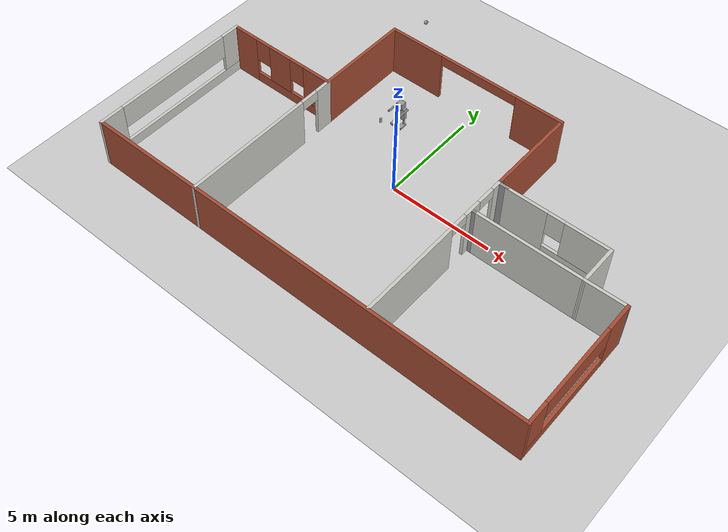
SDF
<sdf version="1.6">
 <world name="default">
  <model name="ground_plane">
   <static>1</static>
   <link name="link">
    <collision name="collision">
     <geometry><plane><normal>0 0 1</normal><size>100 100</size></plane></geometry>
     <surface><friction><ode><mu>100</mu><mu2>50</mu2></ode></friction></surface>
    </collision>
    <visual name="visual">
     <cast_shadows>0</cast_shadows>
     <geometry><plane><normal>0 0 1</normal><size>100 100</size></plane></geometry>
     <material>
      <script><uri>file://media/materials/scripts/gazebo.material</uri><name>Gazebo/Grey</name></script>
     </material>
    </visual>
   </link>
  </model>
  <model name="Building">
   <pose>0.53973 -0.53999 0 0 -0 0</pose>
   <link name="Wall_11">
    <pose>6.62948 1.82989 0 0 -0 0</pose>
    <visual name="Wall_11_Visual_0">
     <pose>-1.4822 0 1.25 0 -0 0</pose>
     <geometry><box><size>2.0356 0.15 2.5</size></box></geometry>
     <material>
      <script><uri>file://media/materials/scripts/gazebo.material</uri><name>Gazebo/CeilingTiled</name></script>
      <ambient>0.435294 0.796078 0.67451 1</ambient>
     </material>
     <meta><layer>0</layer></meta>
    </visual>
    <collision name="Wall_11_Collision_0">
     <geometry><box><size>2.0356 0.15 2.5</size></box></geometry>
     <pose>-1.4822 0 1.25 0 -0 0</pose>
    </collision>
    <visual name="Wall_11_Visual_1">
     <pose>1.0178 0 0.25 0 -0 0</pose>
     <geometry><box><size>2.9644 0.15 0.5</size></box></geometry>
     <material>
      <script><uri>file://media/materials/scripts/gazebo.material</uri><name>Gazebo/CeilingTiled</name></script>
      <ambient>0.435294 0.796078 0.67451 1</ambient>
     </material>
     <meta><layer>0</layer></meta>
    </visual>
    <collision name="Wall_11_Collision_1">
     <geometry><box><size>2.9644 0.15 0.5</size></box></geometry>
     <pose>1.0178 0 0.25 0 -0 0</pose>
    </collision>
    <visual name="Wall_11_Visual_2">
     <pose>1.4178 0 1.5 0 -0 0</pose>
     <geometry><box><size>2.1644 0.15 2</size></box></geometry>
     <material>
      <script><uri>file://media/materials/scripts/gazebo.material</uri><name>Gazebo/CeilingTiled</name></script>
      <ambient>0.435294 0.796078 0.67451 1</ambient>
     </material>
     <meta><layer>0</layer></meta>
    </visual>
    <collision name="Wall_11_Collision_2">
     <geometry><box><size>2.1644 0.15 2</size></box></geometry>
     <pose>1.4178 0 1.5 0 -0 0</pose>
    </collision>
    <visual name="Wall_11_Visual_3">
     <pose>-0.064396 0 1.9 0 -0 0</pose>
     <geometry><box><size>0.8 0.15 1.2</size></box></geometry>
     <material>
      <script><uri>file://media/materials/scripts/gazebo.material</uri><name>Gazebo/CeilingTiled</name></script>
      <ambient>0.435294 0.796078 0.67451 1</ambient>
     </material>
     <meta><layer>0</layer></meta>
    </visual>
    <collision name="Wall_11_Collision_3">
     <geometry><box><size>0.8 0.15 1.2</size></box></geometry>
     <pose>-0.064396 0 1.9 0 -0 0</pose>
    </collision>
   </link>
   <link name="Wall_12">
    <collision name="Wall_12_Collision">
     <geometry><box><size>2 0.15 2.5</size></box></geometry>
     <pose>0 0 1.25 0 -0 0</pose>
    </collision>
    <visual name="Wall_12_Visual">
     <pose>0 0 1.25 0 -0 0</pose>
     <geometry><box><size>2 0.15 2.5</size></box></geometry>
     <material>
      <script><uri>file://media/materials/scripts/gazebo.material</uri><name>Gazebo/CeilingTiled</name></script>
      <ambient>0.435294 0.796078 0.67451 1</ambient>
     </material>
     <meta><layer>0</layer></meta>
    </visual>
    <pose>9.05449 0.904887 0 0 0 -1.5708</pose>
   </link>
   <link name="Wall_13">
    <collision name="Wall_13_Collision">
     <geometry><box><size>2.02022 0.15 2.5</size></box></geometry>
     <pose>0 0 1.25 0 -0 0</pose>
    </collision>
    <visual name="Wall_13_Visual">
     <pose>0 0 1.25 0 -0 0</pose>
     <geometry><box><size>2.02022 0.15 2.5</size></box></geometry>
     <material>
      <script><uri>file://media/materials/scripts/gazebo.material</uri><name>Gazebo/CeilingTiled</name></script>
      <ambient>1 1 1 1</ambient>
     </material>
     <meta><layer>0</layer></meta>
    </visual>
    <pose>9.98954 -0.010056 0 0 -0 0.010755</pose>
   </link>
   <link name="Wall_14">
    <pose>10.9246 -3.175 0 0 0 -1.5708</pose>
    <visual name="Wall_14_Visual_0">
     <pose>-2.57463 0 1.25 0 -0 0</pose>
     <geometry><box><size>1.35073 0.15 2.5</size></box></geometry>
     <material>
      <script><uri>file://media/materials/scripts/gazebo.material</uri><name>Gazebo/Bricks</name></script>
      <ambient>1 1 1 1</ambient>
     </material>
     <meta><layer>0</layer></meta>
    </visual>
    <collision name="Wall_14_Collision_0">
     <geometry><box><size>1.35073 0.15 2.5</size></box></geometry>
     <pose>-2.57463 0 1.25 0 -0 0</pose>
    </collision>
    <visual name="Wall_14_Visual_1">
     <pose>0.675366 0 0.25 0 -0 0</pose>
     <geometry><box><size>5.14927 0.15 0.5</size></box></geometry>
     <material>
      <script><uri>file://media/materials/scripts/gazebo.material</uri><name>Gazebo/Bricks</name></script>
      <ambient>1 1 1 1</ambient>
     </material>
     <meta><layer>0</layer></meta>
    </visual>
    <collision name="Wall_14_Collision_1">
     <geometry><box><size>5.14927 0.15 0.5</size></box></geometry>
     <pose>0.675366 0 0.25 0 -0 0</pose>
    </collision>
    <visual name="Wall_14_Visual_2">
     <pose>2.67537 0 1.5 0 -0 0</pose>
     <geometry><box><size>1.14927 0.15 2</size></box></geometry>
     <material>
      <script><uri>file://media/materials/scripts/gazebo.material</uri><name>Gazebo/Bricks</name></script>
      <ambient>1 1 1 1</ambient>
     </material>
     <meta><layer>0</layer></meta>
    </visual>
    <collision name="Wall_14_Collision_2">
     <geometry><box><size>1.14927 0.15 2</size></box></geometry>
     <pose>2.67537 0 1.5 0 -0 0</pose>
    </collision>
    <visual name="Wall_14_Visual_3">
     <pose>0.100732 0 1.9 0 -0 0</pose>
     <geometry><box><size>4 0.15 1.2</size></box></geometry>
     <material>
      <script><uri>file://media/materials/scripts/gazebo.material</uri><name>Gazebo/Bricks</name></script>
      <ambient>1 1 1 1</ambient>
     </material>
     <meta><layer>0</layer></meta>
    </visual>
    <collision name="Wall_14_Collision_3">
     <geometry><box><size>4 0.15 1.2</size></box></geometry>
     <pose>0.100732 0 1.9 0 -0 0</pose>
    </collision>
   </link>
   <link name="Wall_15">
    <collision name="Wall_15_Collision">
     <geometry><box><size>22 0.15 2.5</size></box></geometry>
     <pose>0 0 1.25 0 -0 0</pose>
    </collision>
    <visual name="Wall_15_Visual">
     <pose>0 0 1.25 0 -0 0</pose>
     <geometry><box><size>22 0.15 2.5</size></box></geometry>
     <material>
      <script><uri>file://media/materials/scripts/gazebo.material</uri><name>Gazebo/Bricks</name></script>
      <ambient>1 1 1 1</ambient>
     </material>
     <meta><layer>0</layer></meta>
    </visual>
    <pose>-0.000401 -6.35 0 0 -0 3.14159</pose>
   </link>
   <link name="Wall_16">
    <pose>-10.9254 -2.3 0 0 -0 1.5708</pose>
    <visual name="Wall_16_Visual_0">
     <pose>-3.50481 0 1.25 0 -0 0</pose>
     <geometry><box><size>1.24037 0.15 2.5</size></box></geometry>
     <material>
      <script><uri>file://media/materials/scripts/gazebo.material</uri><name>Gazebo/CeilingTiled</name></script>
      <ambient>0.435294 0.796078 0.67451 1</ambient>
     </material>
     <meta><layer>0</layer></meta>
    </visual>
    <collision name="Wall_16_Collision_0">
     <geometry><box><size>1.24037 0.15 2.5</size></box></geometry>
     <pose>-3.50481 0 1.25 0 -0 0</pose>
    </collision>
    <visual name="Wall_16_Visual_1">
     <pose>0.620185 0 0.25 0 -0 0</pose>
     <geometry><box><size>7.00963 0.15 0.5</size></box></geometry>
     <material>
      <script><uri>file://media/materials/scripts/gazebo.material</uri><name>Gazebo/CeilingTiled</name></script>
      <ambient>0.435294 0.796078 0.67451 1</ambient>
     </material>
     <meta><layer>0</layer></meta>
    </visual>
    <collision name="Wall_16_Collision_1">
     <geometry><box><size>7.00963 0.15 0.5</size></box></geometry>
     <pose>0.620185 0 0.25 0 -0 0</pose>
    </collision>
    <visual name="Wall_16_Visual_2">
     <pose>3.62019 0 1.5 0 -0 0</pose>
     <geometry><box><size>1.00963 0.15 2</size></box></geometry>
     <material>
      <script><uri>file://media/materials/scripts/gazebo.material</uri><name>Gazebo/CeilingTiled</name></script>
      <ambient>0.435294 0.796078 0.67451 1</ambient>
     </material>
     <meta><layer>0</layer></meta>
    </visual>
    <collision name="Wall_16_Collision_2">
     <geometry><box><size>1.00963 0.15 2</size></box></geometry>
     <pose>3.62019 0 1.5 0 -0 0</pose>
    </collision>
    <visual name="Wall_16_Visual_3">
     <pose>0.11537 0 1.9 0 -0 0</pose>
     <geometry><box><size>6 0.15 1.2</size></box></geometry>
     <material>
      <script><uri>file://media/materials/scripts/gazebo.material</uri><name>Gazebo/CeilingTiled</name></script>
      <ambient>0.435294 0.796078 0.67451 1</ambient>
     </material>
     <meta><layer>0</layer></meta>
    </visual>
    <collision name="Wall_16_Collision_3">
     <geometry><box><size>6 0.15 1.2</size></box></geometry>
     <pose>0.11537 0 1.9 0 -0 0</pose>
    </collision>
   </link>
   <link name="Wall_17">
    <pose>-8.1254 1.75 0 0 -0 0</pose>
    <visual name="Wall_17_Visual_0">
     <pose>-2.16717 0 1.25 0 -0 0</pose>
     <geometry><box><size>1.41566 0.15 2.5</size></box></geometry>
     <material>
      <script><uri>file://media/materials/scripts/gazebo.material</uri><name>Gazebo/Bricks</name></script>
      <ambient>1 1 1 1</ambient>
     </material>
     <meta><layer>0</layer></meta>
    </visual>
    <collision name="Wall_17_Collision_0">
     <geometry><box><size>1.41566 0.15 2.5</size></box></geometry>
     <pose>-2.16717 0 1.25 0 -0 0</pose>
    </collision>
    <visual name="Wall_17_Visual_1">
     <pose>0.707832 0 0.25 0 -0 0</pose>
     <geometry><box><size>4.33434 0.15 0.5</size></box></geometry>
     <material>
      <script><uri>file://media/materials/scripts/gazebo.material</uri><name>Gazebo/Bricks</name></script>
      <ambient>1 1 1 1</ambient>
     </material>
     <meta><layer>0</layer></meta>
    </visual>
    <collision name="Wall_17_Collision_1">
     <geometry><box><size>4.33434 0.15 0.5</size></box></geometry>
     <pose>0.707832 0 0.25 0 -0 0</pose>
    </collision>
    <visual name="Wall_17_Visual_2">
     <pose>-0.039392 0 1.5 0 -0 0</pose>
     <geometry><box><size>1.23989 0.15 2</size></box></geometry>
     <material>
      <script><uri>file://media/materials/scripts/gazebo.material</uri><name>Gazebo/Bricks</name></script>
      <ambient>1 1 1 1</ambient>
     </material>
     <meta><layer>0</layer></meta>
    </visual>
    <collision name="Wall_17_Collision_2">
     <geometry><box><size>1.23989 0.15 2</size></box></geometry>
     <pose>-0.039392 0 1.5 0 -0 0</pose>
    </collision>
    <visual name="Wall_17_Visual_3">
     <pose>2.12778 0 1.5 0 -0 0</pose>
     <geometry><box><size>1.49445 0.15 2</size></box></geometry>
     <material>
      <script><uri>file://media/materials/scripts/gazebo.material</uri><name>Gazebo/Bricks</name></script>
      <ambient>1 1 1 1</ambient>
     </material>
     <meta><layer>0</layer></meta>
    </visual>
    <collision name="Wall_17_Collision_3">
     <geometry><box><size>1.49445 0.15 2</size></box></geometry>
     <pose>2.12778 0 1.5 0 -0 0</pose>
    </collision>
    <visual name="Wall_17_Visual_4">
     <pose>-1.05934 0 1.9 0 -0 0</pose>
     <geometry><box><size>0.8 0.15 1.2</size></box></geometry>
     <material>
      <script><uri>file://media/materials/scripts/gazebo.material</uri><name>Gazebo/Bricks</name></script>
      <ambient>1 1 1 1</ambient>
     </material>
     <meta><layer>0</layer></meta>
    </visual>
    <collision name="Wall_17_Collision_4">
     <geometry><box><size>0.8 0.15 1.2</size></box></geometry>
     <pose>-1.05934 0 1.9 0 -0 0</pose>
    </collision>
    <visual name="Wall_17_Visual_5">
     <pose>0.980551 0 1.9 0 -0 0</pose>
     <geometry><box><size>0.8 0.15 1.2</size></box></geometry>
     <material>
      <script><uri>file://media/materials/scripts/gazebo.material</uri><name>Gazebo/Bricks</name></script>
      <ambient>1 1 1 1</ambient>
     </material>
     <meta><layer>0</layer></meta>
    </visual>
    <collision name="Wall_17_Collision_5">
     <geometry><box><size>0.8 0.15 1.2</size></box></geometry>
     <pose>0.980551 0 1.9 0 -0 0</pose>
    </collision>
   </link>
   <link name="Wall_18">
    <collision name="Wall_18_Collision">
     <geometry><box><size>4.75 0.15 2.5</size></box></geometry>
     <pose>0 0 1.25 0 -0 0</pose>
    </collision>
    <visual name="Wall_18_Visual">
     <pose>0 0 1.25 0 -0 0</pose>
     <geometry><box><size>4.75 0.15 2.5</size></box></geometry>
     <material>
      <script><uri>file://media/materials/scripts/gazebo.material</uri><name>Gazebo/Bricks</name></script>
      <ambient>1 1 1 1</ambient>
     </material>
     <meta><layer>0</layer></meta>
    </visual>
    <pose>-5.3254 4.05 0 0 -0 1.5708</pose>
   </link>
   <link name="Wall_19">
    <pose>-0.775401 6.35 0 0 -0 0</pose>
    <visual name="Wall_19_Visual_0">
     <pose>-3.2002 0 1.25 0 -0 0</pose>
     <geometry><box><size>2.8496 0.15 2.5</size></box></geometry>
     <material>
      <script><uri>file://media/materials/scripts/gazebo.material</uri><name>Gazebo/Bricks</name></script>
      <ambient>1 1 1 1</ambient>
     </material>
     <meta><layer>0</layer></meta>
    </visual>
    <collision name="Wall_19_Collision_0">
     <geometry><box><size>2.8496 0.15 2.5</size></box></geometry>
     <pose>-3.2002 0 1.25 0 -0 0</pose>
    </collision>
    <visual name="Wall_19_Visual_1">
     <pose>3.4248 0 1.25 0 -0 0</pose>
     <geometry><box><size>2.4004 0.15 2.5</size></box></geometry>
     <material>
      <script><uri>file://media/materials/scripts/gazebo.material</uri><name>Gazebo/Bricks</name></script>
      <ambient>1 1 1 1</ambient>
     </material>
     <meta><layer>0</layer></meta>
    </visual>
    <collision name="Wall_19_Collision_1">
     <geometry><box><size>2.4004 0.15 2.5</size></box></geometry>
     <pose>3.4248 0 1.25 0 -0 0</pose>
    </collision>
    <visual name="Wall_19_Visual_2">
     <pose>0.224605 0 2.25 0 -0 0</pose>
     <geometry><box><size>4 0.15 0.5</size></box></geometry>
     <material>
      <script><uri>file://media/materials/scripts/gazebo.material</uri><name>Gazebo/Bricks</name></script>
      <ambient>1 1 1 1</ambient>
     </material>
     <meta><layer>0</layer></meta>
    </visual>
    <collision name="Wall_19_Collision_2">
     <geometry><box><size>4 0.15 0.5</size></box></geometry>
     <pose>0.224605 0 2.25 0 -0 0</pose>
    </collision>
   </link>
   <link name="Wall_20">
    <collision name="Wall_20_Collision">
     <geometry><box><size>4.5 0.15 2.5</size></box></geometry>
     <pose>0 0 1.25 0 -0 0</pose>
    </collision>
    <visual name="Wall_20_Visual">
     <pose>0 0 1.25 0 -0 0</pose>
     <geometry><box><size>4.5 0.15 2.5</size></box></geometry>
     <material>
      <script><uri>file://media/materials/scripts/gazebo.material</uri><name>Gazebo/Bricks</name></script>
      <ambient>1 1 1 1</ambient>
     </material>
     <meta><layer>0</layer></meta>
    </visual>
    <pose>3.7746 4.175 0 0 0 -1.5708</pose>
   </link>
   <link name="Wall_23">
    <collision name="Wall_23_Collision">
     <geometry><box><size>0.323879 0.15 2.5</size></box></geometry>
     <pose>0 0 1.25 0 -0 0</pose>
    </collision>
    <visual name="Wall_23_Visual">
     <pose>0 0 1.25 0 -0 0</pose>
     <geometry><box><size>0.323879 0.15 2.5</size></box></geometry>
     <material>
      <script><uri>file://media/materials/scripts/gazebo.material</uri><name>Gazebo/Grey</name></script>
      <ambient>1 1 1 1</ambient>
     </material>
     <meta><layer>0</layer></meta>
    </visual>
    <pose>3.77125 1.91312 0 0 0 -1.60936</pose>
   </link>
   <link name="Wall_26">
    <collision name="Wall_26_Collision">
     <geometry><box><size>0.587206 0.15 2.5</size></box></geometry>
     <pose>0 0 1.25 0 -0 0</pose>
    </collision>
    <visual name="Wall_26_Visual">
     <pose>0 0 1.25 0 -0 0</pose>
     <geometry><box><size>0.587206 0.15 2.5</size></box></geometry>
     <material>
      <script><uri>file://media/materials/scripts/gazebo.material</uri><name>Gazebo/Grey</name></script>
      <ambient>1 1 1 1</ambient>
     </material>
     <meta><layer>0</layer></meta>
    </visual>
    <pose>3.98619 1.83477 0 0 0 -3.13326</pose>
   </link>
   <link name="Wall_28">
    <pose>-5.3254 -2.3 0 0 0 -1.5708</pose>
    <visual name="Wall_28_Visual_0">
     <pose>-3.6972 0 1.25 0 -0 0</pose>
     <geometry><box><size>0.855593 0.15 2.5</size></box></geometry>
     <material>
      <script><uri>file://media/materials/scripts/gazebo.material</uri><name>Gazebo/CeilingTiled</name></script>
      <ambient>0.996078 0.47451 0.0196078 1</ambient>
     </material>
     <meta><layer>0</layer></meta>
    </visual>
    <collision name="Wall_28_Collision_0">
     <geometry><box><size>0.855593 0.15 2.5</size></box></geometry>
     <pose>-3.6972 0 1.25 0 -0 0</pose>
    </collision>
    <visual name="Wall_28_Visual_1">
     <pose>0.877797 0 1.25 0 -0 0</pose>
     <geometry><box><size>6.49441 0.15 2.5</size></box></geometry>
     <material>
      <script><uri>file://media/materials/scripts/gazebo.material</uri><name>Gazebo/CeilingTiled</name></script>
      <ambient>0.996078 0.47451 0.0196078 1</ambient>
     </material>
     <meta><layer>0</layer></meta>
    </visual>
    <collision name="Wall_28_Collision_1">
     <geometry><box><size>6.49441 0.15 2.5</size></box></geometry>
     <pose>0.877797 0 1.25 0 -0 0</pose>
    </collision>
    <visual name="Wall_28_Visual_2">
     <pose>-2.81941 0 2.25 0 -0 0</pose>
     <geometry><box><size>0.9 0.15 0.5</size></box></geometry>
     <material>
      <script><uri>file://media/materials/scripts/gazebo.material</uri><name>Gazebo/CeilingTiled</name></script>
      <ambient>0.996078 0.47451 0.0196078 1</ambient>
     </material>
     <meta><layer>0</layer></meta>
    </visual>
    <collision name="Wall_28_Collision_2">
     <geometry><box><size>0.9 0.15 0.5</size></box></geometry>
     <pose>-2.81941 0 2.25 0 -0 0</pose>
    </collision>
   </link>
   <link name="Wall_30">
    <pose>3.7679 -2.21705 0 0 0 -1.5708</pose>
    <visual name="Wall_30_Visual_0">
     <pose>-3.8692 0 1.25 0 -0 0</pose>
     <geometry><box><size>0.511595 0.15 2.5</size></box></geometry>
     <material>
      <script><uri>file://media/materials/scripts/gazebo.material</uri><name>Gazebo/CeilingTiled</name></script>
      <ambient>0.996078 0.47451 0.0196078 1</ambient>
     </material>
     <meta><layer>0</layer></meta>
    </visual>
    <collision name="Wall_30_Collision_0">
     <geometry><box><size>0.511595 0.15 2.5</size></box></geometry>
     <pose>-3.8692 0 1.25 0 -0 0</pose>
    </collision>
    <visual name="Wall_30_Visual_1">
     <pose>-2.26206 0 1.25 0 -0 0</pose>
     <geometry><box><size>0.902691 0.15 2.5</size></box></geometry>
     <material>
      <script><uri>file://media/materials/scripts/gazebo.material</uri><name>Gazebo/CeilingTiled</name></script>
      <ambient>0.996078 0.47451 0.0196078 1</ambient>
     </material>
     <meta><layer>0</layer></meta>
    </visual>
    <collision name="Wall_30_Collision_1">
     <geometry><box><size>0.902691 0.15 2.5</size></box></geometry>
     <pose>-2.26206 0 1.25 0 -0 0</pose>
    </collision>
    <visual name="Wall_30_Visual_2">
     <pose>1.60714 0 1.25 0 -0 0</pose>
     <geometry><box><size>5.03571 0.15 2.5</size></box></geometry>
     <material>
      <script><uri>file://media/materials/scripts/gazebo.material</uri><name>Gazebo/CeilingTiled</name></script>
      <ambient>0.996078 0.47451 0.0196078 1</ambient>
     </material>
     <meta><layer>0</layer></meta>
    </visual>
    <collision name="Wall_30_Collision_2">
     <geometry><box><size>5.03571 0.15 2.5</size></box></geometry>
     <pose>1.60714 0 1.25 0 -0 0</pose>
    </collision>
    <visual name="Wall_30_Visual_3">
     <pose>-3.16341 0 2.25 0 -0 0</pose>
     <geometry><box><size>0.9 0.15 0.5</size></box></geometry>
     <material>
      <script><uri>file://media/materials/scripts/gazebo.material</uri><name>Gazebo/CeilingTiled</name></script>
      <ambient>0.996078 0.47451 0.0196078 1</ambient>
     </material>
     <meta><layer>0</layer></meta>
    </visual>
    <collision name="Wall_30_Collision_3">
     <geometry><box><size>0.9 0.15 0.5</size></box></geometry>
     <pose>-3.16341 0 2.25 0 -0 0</pose>
    </collision>
    <visual name="Wall_30_Visual_4">
     <pose>-1.36071 0 2.25 0 -0 0</pose>
     <geometry><box><size>0.9 0.15 0.5</size></box></geometry>
     <material>
      <script><uri>file://media/materials/scripts/gazebo.material</uri><name>Gazebo/CeilingTiled</name></script>
      <ambient>0.996078 0.47451 0.0196078 1</ambient>
     </material>
     <meta><layer>0</layer></meta>
    </visual>
    <collision name="Wall_30_Collision_4">
     <geometry><box><size>0.9 0.15 0.5</size></box></geometry>
     <pose>-1.36071 0 2.25 0 -0 0</pose>
    </collision>
   </link>
   <link name="Wall_34">
    <collision name="Wall_34_Collision">
     <geometry><box><size>5.25 0.15 2.5</size></box></geometry>
     <pose>0 0 1.25 0 -0 0</pose>
    </collision>
    <visual name="Wall_34_Visual">
     <pose>0 0 1.25 0 -0 0</pose>
     <geometry><box><size>5.25 0.15 2.5</size></box></geometry>
     <material>
      <script><uri>file://media/materials/scripts/gazebo.material</uri><name>Gazebo/CeilingTiled</name></script>
      <ambient>0.996078 0.47451 0.0196078 1</ambient>
     </material>
     <meta><layer>0</layer></meta>
    </visual>
    <pose>6.50448 -0.020113 0 0 -0 3.14159</pose>
   </link>
   <link name="Wall_35">
    <collision name="Wall_35_Collision">
     <geometry><box><size>0.25 0.15 2.5</size></box></geometry>
     <pose>0 0 1.25 0 -0 0</pose>
    </collision>
    <visual name="Wall_35_Visual">
     <pose>0 0 1.25 0 -0 0</pose>
     <geometry><box><size>0.25 0.15 2.5</size></box></geometry>
     <material>
      <script><uri>file://media/materials/scripts/gazebo.material</uri><name>Gazebo/Grey</name></script>
      <ambient>1 1 1 1</ambient>
     </material>
     <meta><layer>0</layer></meta>
    </visual>
    <pose>3.90449 -0.020113 0 0 -0 3.14159</pose>
   </link>
   <static>1</static>
  </model>
  <model name="Robot">
   <link name="link_0_clone">
    <pose>0.4 0.150001 0.299999 -2e-05 0 0</pose>
    <inertial>
     <mass>1</mass>
     <inertia><ixx>0.145833</ixx><ixy>0</ixy><ixz>0</ixz><iyy>0.145833</iyy><iyz>0</iyz><izz>0.125</izz></inertia>
    </inertial>
    <visual name="visual">
     <geometry><cylinder><radius>0.05</radius><length>0.3</length></cylinder></geometry>
     <material>
      <lighting>1</lighting>
      <script><uri>file://media/materials/scripts/gazebo.material</uri><name>Gazebo/Grey</name></script>
      <shader type="pixel"><normal_map>__default__</normal_map></shader>
      <ambient>0.3 0.3 0.3 1</ambient>
      <diffuse>0.7 0.7 0.7 1</diffuse>
      <specular>0.01 0.01 0.01 1</specular>
      <emissive>0 0 0 1</emissive>
     </material>
    </visual>
    <collision name="collision">
     <geometry><cylinder><radius>0.05</radius><length>0.3</length></cylinder></geometry>
     <surface>
      <friction>
       <ode><mu>1</mu><mu2>1</mu2><fdir1>0 0 0</fdir1><slip1>0</slip1><slip2>0</slip2></ode>
       <torsional>
        <coefficient>1</coefficient>
        <patch_radius>0</patch_radius>
        <surface_radius>0</surface_radius>
        <use_patch_radius>1</use_patch_radius>
        <ode><slip>0</slip></ode>
       </torsional>
      </friction>
      <bounce><restitution_coefficient>0</restitution_coefficient><threshold>1e+06</threshold></bounce>
      <contact>
       <collide_without_contact>0</collide_without_contact>
       <collide_without_contact_bitmask>1</collide_without_contact_bitmask>
       <collide_bitmask>1</collide_bitmask>
       <ode>
        <soft_cfm>0</soft_cfm>
        <soft_erp>0.2</soft_erp>
        <kp>1e+13</kp>
        <kd>1</kd>
        <max_vel>0.01</max_vel>
        <min_depth>0</min_depth>
       </ode>
       <bullet>
        <split_impulse>1</split_impulse>
        <split_impulse_penetration_threshold>-0.01</split_impulse_penetration_threshold>
        <soft_cfm>0</soft_cfm>
        <soft_erp>0.2</soft_erp>
        <kp>1e+13</kp>
        <kd>1</kd>
       </bullet>
      </contact>
     </surface>
    </collision>
   </link>
   <link name="link_0_clone_clone">
    <pose>0 0.149999 0.3 -3e-05 -0 -0</pose>
    <inertial>
     <mass>1</mass>
     <inertia><ixx>0.145833</ixx><ixy>0</ixy><ixz>0</ixz><iyy>0.145833</iyy><iyz>0</iyz><izz>0.125</izz></inertia>
    </inertial>
    <visual name="visual">
     <geometry><cylinder><radius>0.05</radius><length>0.3</length></cylinder></geometry>
     <material>
      <lighting>1</lighting>
      <script><uri>file://media/materials/scripts/gazebo.material</uri><name>Gazebo/Grey</name></script>
      <shader type="pixel"><normal_map>__default__</normal_map></shader>
      <ambient>0.3 0.3 0.3 1</ambient>
      <diffuse>0.7 0.7 0.7 1</diffuse>
      <specular>0.01 0.01 0.01 1</specular>
      <emissive>0 0 0 1</emissive>
     </material>
    </visual>
    <collision name="collision">
     <geometry><cylinder><radius>0.05</radius><length>0.3</length></cylinder></geometry>
     <surface>
      <friction>
       <ode><mu>1</mu><mu2>1</mu2><fdir1>0 0 0</fdir1><slip1>0</slip1><slip2>0</slip2></ode>
       <torsional>
        <coefficient>1</coefficient>
        <patch_radius>0</patch_radius>
        <surface_radius>0</surface_radius>
        <use_patch_radius>1</use_patch_radius>
        <ode><slip>0</slip></ode>
       </torsional>
      </friction>
      <bounce><restitution_coefficient>0</restitution_coefficient><threshold>1e+06</threshold></bounce>
      <contact>
       <collide_without_contact>0</collide_without_contact>
       <collide_without_contact_bitmask>1</collide_without_contact_bitmask>
       <collide_bitmask>1</collide_bitmask>
       <ode>
        <soft_cfm>0</soft_cfm>
        <soft_erp>0.2</soft_erp>
        <kp>1e+13</kp>
        <kd>1</kd>
        <max_vel>0.01</max_vel>
        <min_depth>0</min_depth>
       </ode>
       <bullet>
        <split_impulse>1</split_impulse>
        <split_impulse_penetration_threshold>-0.01</split_impulse_penetration_threshold>
        <soft_cfm>0</soft_cfm>
        <soft_erp>0.2</soft_erp>
        <kp>1e+13</kp>
        <kd>1</kd>
       </bullet>
      </contact>
     </surface>
    </collision>
   </link>
   <link name="link_0_clone_clone_0">
    <pose>-0.1 -0.049994 0.999978 1.5707 -0 0</pose>
    <inertial>
     <mass>1</mass>
     <inertia><ixx>0.145833</ixx><ixy>0</ixy><ixz>0</ixz><iyy>0.145833</iyy><iyz>0</iyz><izz>0.125</izz></inertia>
    </inertial>
    <visual name="visual">
     <geometry><cylinder><radius>0.05</radius><length>0.6</length></cylinder></geometry>
     <material>
      <lighting>1</lighting>
      <script><uri>file://media/materials/scripts/gazebo.material</uri><name>Gazebo/Grey</name></script>
      <shader type="pixel"><normal_map>__default__</normal_map></shader>
      <ambient>0.3 0.3 0.3 1</ambient>
      <diffuse>0.7 0.7 0.7 1</diffuse>
      <specular>0.01 0.01 0.01 1</specular>
      <emissive>0 0 0 1</emissive>
     </material>
    </visual>
    <collision name="collision">
     <geometry><cylinder><radius>0.05</radius><length>0.6</length></cylinder></geometry>
     <surface>
      <friction>
       <ode><mu>1</mu><mu2>1</mu2><fdir1>0 0 0</fdir1><slip1>0</slip1><slip2>0</slip2></ode>
       <torsional>
        <coefficient>1</coefficient>
        <patch_radius>0</patch_radius>
        <surface_radius>0</surface_radius>
        <use_patch_radius>1</use_patch_radius>
        <ode><slip>0</slip></ode>
       </torsional>
      </friction>
      <bounce><restitution_coefficient>0</restitution_coefficient><threshold>1e+06</threshold></bounce>
      <contact>
       <collide_without_contact>0</collide_without_contact>
       <collide_without_contact_bitmask>1</collide_without_contact_bitmask>
       <collide_bitmask>1</collide_bitmask>
       <ode>
        <soft_cfm>0</soft_cfm>
        <soft_erp>0.2</soft_erp>
        <kp>1e+13</kp>
        <kd>1</kd>
        <max_vel>0.01</max_vel>
        <min_depth>0</min_depth>
       </ode>
       <bullet>
        <split_impulse>1</split_impulse>
        <split_impulse_penetration_threshold>-0.01</split_impulse_penetration_threshold>
        <soft_cfm>0</soft_cfm>
        <soft_erp>0.2</soft_erp>
        <kp>1e+13</kp>
        <kd>1</kd>
       </bullet>
      </contact>
     </surface>
    </collision>
   </link>
   <link name="link_0_clone_clone_0_clone">
    <pose>0.5 -0.049994 0.999978 1.5707 -0 0</pose>
    <inertial>
     <mass>1</mass>
     <inertia><ixx>0.145833</ixx><ixy>0</ixy><ixz>0</ixz><iyy>0.145833</iyy><iyz>0</iyz><izz>0.125</izz></inertia>
    </inertial>
    <visual name="visual">
     <geometry><cylinder><radius>0.05</radius><length>0.6</length></cylinder></geometry>
     <material>
      <lighting>1</lighting>
      <script><uri>file://media/materials/scripts/gazebo.material</uri><name>Gazebo/Grey</name></script>
      <shader type="pixel"><normal_map>__default__</normal_map></shader>
      <ambient>0.3 0.3 0.3 1</ambient>
      <diffuse>0.7 0.7 0.7 1</diffuse>
      <specular>0.01 0.01 0.01 1</specular>
      <emissive>0 0 0 1</emissive>
     </material>
    </visual>
    <collision name="collision">
     <geometry><cylinder><radius>0.05</radius><length>0.6</length></cylinder></geometry>
     <surface>
      <friction>
       <ode><mu>1</mu><mu2>1</mu2><fdir1>0 0 0</fdir1><slip1>0</slip1><slip2>0</slip2></ode>
       <torsional>
        <coefficient>1</coefficient>
        <patch_radius>0</patch_radius>
        <surface_radius>0</surface_radius>
        <use_patch_radius>1</use_patch_radius>
        <ode><slip>0</slip></ode>
       </torsional>
      </friction>
      <bounce><restitution_coefficient>0</restitution_coefficient><threshold>1e+06</threshold></bounce>
      <contact>
       <collide_without_contact>0</collide_without_contact>
       <collide_without_contact_bitmask>1</collide_without_contact_bitmask>
       <collide_bitmask>1</collide_bitmask>
       <ode>
        <soft_cfm>0</soft_cfm>
        <soft_erp>0.2</soft_erp>
        <kp>1e+13</kp>
        <kd>1</kd>
        <max_vel>0.01</max_vel>
        <min_depth>0</min_depth>
       </ode>
       <bullet>
        <split_impulse>1</split_impulse>
        <split_impulse_penetration_threshold>-0.01</split_impulse_penetration_threshold>
        <soft_cfm>0</soft_cfm>
        <soft_erp>0.2</soft_erp>
        <kp>1e+13</kp>
        <kd>1</kd>
       </bullet>
      </contact>
     </surface>
    </collision>
   </link>
   <link name="link_clone">
    <pose>-0 -0 0.1 -1e-05 -0 0</pose>
    <inertial>
     <mass>1</mass>
     <inertia>
      <ixx>0.166667</ixx>
      <ixy>0</ixy>
      <ixz>0</ixz>
      <iyy>0.166667</iyy>
      <iyz>0</iyz>
      <izz>0.166667</izz>
     </inertia>
    </inertial>
    <visual name="visual">
     <geometry><box><size>0.2 0.4 0.1</size></box></geometry>
     <material>
      <script><name>Gazebo/Grey</name><uri>file://media/materials/scripts/gazebo.material</uri></script>
      <shader type="pixel"><normal_map>__default__</normal_map></shader>
      <ambient>0.3 0.3 0.3 1</ambient>
      <diffuse>0.7 0.7 0.7 1</diffuse>
      <specular>0.01 0.01 0.01 1</specular>
      <emissive>0 0 0 1</emissive>
     </material>
    </visual>
    <collision name="collision">
     <geometry><box><size>0.2 0.4 0.1</size></box></geometry>
     <surface>
      <friction>
       <ode><mu>1</mu><mu2>1</mu2><fdir1>0 0 0</fdir1><slip1>0</slip1><slip2>0</slip2></ode>
       <torsional>
        <coefficient>1</coefficient>
        <patch_radius>0</patch_radius>
        <surface_radius>0</surface_radius>
        <use_patch_radius>1</use_patch_radius>
        <ode><slip>0</slip></ode>
       </torsional>
      </friction>
      <bounce><restitution_coefficient>0</restitution_coefficient><threshold>1e+06</threshold></bounce>
      <contact>
       <collide_without_contact>0</collide_without_contact>
       <collide_without_contact_bitmask>1</collide_without_contact_bitmask>
       <collide_bitmask>1</collide_bitmask>
       <ode>
        <soft_cfm>0</soft_cfm>
        <soft_erp>0.2</soft_erp>
        <kp>1e+13</kp>
        <kd>1</kd>
        <max_vel>0.01</max_vel>
        <min_depth>0</min_depth>
       </ode>
       <bullet>
        <split_impulse>1</split_impulse>
        <split_impulse_penetration_threshold>-0.01</split_impulse_penetration_threshold>
        <soft_cfm>0</soft_cfm>
        <soft_erp>0.2</soft_erp>
        <kp>1e+13</kp>
        <kd>1</kd>
       </bullet>
      </contact>
     </surface>
    </collision>
   </link>
   <link name="link_clone_0">
    <pose>0.4 -0 0.1 -1e-05 -0 0</pose>
    <inertial>
     <mass>1</mass>
     <inertia>
      <ixx>0.166667</ixx>
      <ixy>0</ixy>
      <ixz>0</ixz>
      <iyy>0.166667</iyy>
      <iyz>0</iyz>
      <izz>0.166667</izz>
     </inertia>
    </inertial>
    <visual name="visual">
     <geometry><box><size>0.2 0.4 0.1</size></box></geometry>
     <material>
      <script><name>Gazebo/Grey</name><uri>file://media/materials/scripts/gazebo.material</uri></script>
      <shader type="pixel"><normal_map>__default__</normal_map></shader>
      <ambient>0.3 0.3 0.3 1</ambient>
      <diffuse>0.7 0.7 0.7 1</diffuse>
      <specular>0.01 0.01 0.01 1</specular>
      <emissive>0 0 0 1</emissive>
     </material>
    </visual>
    <collision name="collision">
     <geometry><box><size>0.2 0.4 0.1</size></box></geometry>
     <surface>
      <friction>
       <ode><mu>1</mu><mu2>1</mu2><fdir1>0 0 0</fdir1><slip1>0</slip1><slip2>0</slip2></ode>
       <torsional>
        <coefficient>1</coefficient>
        <patch_radius>0</patch_radius>
        <surface_radius>0</surface_radius>
        <use_patch_radius>1</use_patch_radius>
        <ode><slip>0</slip></ode>
       </torsional>
      </friction>
      <bounce><restitution_coefficient>0</restitution_coefficient><threshold>1e+06</threshold></bounce>
      <contact>
       <collide_without_contact>0</collide_without_contact>
       <collide_without_contact_bitmask>1</collide_without_contact_bitmask>
       <collide_bitmask>1</collide_bitmask>
       <ode>
        <soft_cfm>0</soft_cfm>
        <soft_erp>0.2</soft_erp>
        <kp>1e+13</kp>
        <kd>1</kd>
        <max_vel>0.01</max_vel>
        <min_depth>0</min_depth>
       </ode>
       <bullet>
        <split_impulse>1</split_impulse>
        <split_impulse_penetration_threshold>-0.01</split_impulse_penetration_threshold>
        <soft_cfm>0</soft_cfm>
        <soft_erp>0.2</soft_erp>
        <kp>1e+13</kp>
        <kd>1</kd>
       </bullet>
      </contact>
     </surface>
    </collision>
   </link>
   <link name="link_clone_0_clone">
    <pose>0.2 0.150005 0.750001 -2e-05 0 0</pose>
    <inertial>
     <mass>1</mass>
     <inertia>
      <ixx>0.166667</ixx>
      <ixy>0</ixy>
      <ixz>0</ixz>
      <iyy>0.166667</iyy>
      <iyz>0</iyz>
      <izz>0.166667</izz>
     </inertia>
    </inertial>
    <visual name="visual">
     <geometry><box><size>0.5 0.2 0.6</size></box></geometry>
     <material>
      <script><name>Gazebo/Grey</name><uri>file://media/materials/scripts/gazebo.material</uri></script>
      <shader type="pixel"><normal_map>__default__</normal_map></shader>
      <ambient>0.3 0.3 0.3 1</ambient>
      <diffuse>0.7 0.7 0.7 1</diffuse>
      <specular>0.01 0.01 0.01 1</specular>
      <emissive>0 0 0 1</emissive>
     </material>
    </visual>
    <collision name="collision">
     <geometry><box><size>0.5 0.2 0.6</size></box></geometry>
     <surface>
      <friction>
       <ode><mu>1</mu><mu2>1</mu2><fdir1>0 0 0</fdir1><slip1>0</slip1><slip2>0</slip2></ode>
       <torsional>
        <coefficient>1</coefficient>
        <patch_radius>0</patch_radius>
        <surface_radius>0</surface_radius>
        <use_patch_radius>1</use_patch_radius>
        <ode><slip>0</slip></ode>
       </torsional>
      </friction>
      <bounce><restitution_coefficient>0</restitution_coefficient><threshold>1e+06</threshold></bounce>
      <contact>
       <collide_without_contact>0</collide_without_contact>
       <collide_without_contact_bitmask>1</collide_without_contact_bitmask>
       <collide_bitmask>1</collide_bitmask>
       <ode>
        <soft_cfm>0</soft_cfm>
        <soft_erp>0.2</soft_erp>
        <kp>1e+13</kp>
        <kd>1</kd>
        <max_vel>0.01</max_vel>
        <min_depth>0</min_depth>
       </ode>
       <bullet>
        <split_impulse>1</split_impulse>
        <split_impulse_penetration_threshold>-0.01</split_impulse_penetration_threshold>
        <soft_cfm>0</soft_cfm>
        <soft_erp>0.2</soft_erp>
        <kp>1e+13</kp>
        <kd>1</kd>
       </bullet>
      </contact>
     </surface>
    </collision>
   </link>
   <link name="link_clone_0_clone_clone">
    <pose>0.2 0.150009 1.2 -3e-05 -0 -0</pose>
    <inertial>
     <mass>1</mass>
     <inertia>
      <ixx>0.166667</ixx>
      <ixy>0</ixy>
      <ixz>0</ixz>
      <iyy>0.166667</iyy>
      <iyz>0</iyz>
      <izz>0.166667</izz>
     </inertia>
    </inertial>
    <visual name="visual">
     <geometry><box><size>0.3 0.3 0.3</size></box></geometry>
     <material>
      <script><name>Gazebo/Grey</name><uri>file://media/materials/scripts/gazebo.material</uri></script>
      <shader type="pixel"><normal_map>__default__</normal_map></shader>
      <ambient>0.3 0.3 0.3 1</ambient>
      <diffuse>0.7 0.7 0.7 1</diffuse>
      <specular>0.01 0.01 0.01 1</specular>
      <emissive>0 0 0 1</emissive>
     </material>
    </visual>
    <collision name="collision">
     <geometry><box><size>0.3 0.3 0.3</size></box></geometry>
     <surface>
      <friction>
       <ode><mu>1</mu><mu2>1</mu2><fdir1>0 0 0</fdir1><slip1>0</slip1><slip2>0</slip2></ode>
       <torsional>
        <coefficient>1</coefficient>
        <patch_radius>0</patch_radius>
        <surface_radius>0</surface_radius>
        <use_patch_radius>1</use_patch_radius>
        <ode><slip>0</slip></ode>
       </torsional>
      </friction>
      <bounce><restitution_coefficient>0</restitution_coefficient><threshold>1e+06</threshold></bounce>
      <contact>
       <collide_without_contact>0</collide_without_contact>
       <collide_without_contact_bitmask>1</collide_without_contact_bitmask>
       <collide_bitmask>1</collide_bitmask>
       <ode>
        <soft_cfm>0</soft_cfm>
        <soft_erp>0.2</soft_erp>
        <kp>1e+13</kp>
        <kd>1</kd>
        <max_vel>0.01</max_vel>
        <min_depth>0</min_depth>
       </ode>
       <bullet>
        <split_impulse>1</split_impulse>
        <split_impulse_penetration_threshold>-0.01</split_impulse_penetration_threshold>
        <soft_cfm>0</soft_cfm>
        <soft_erp>0.2</soft_erp>
        <kp>1e+13</kp>
        <kd>1</kd>
       </bullet>
      </contact>
     </surface>
    </collision>
   </link>
   <joint name="link_0_clone_JOINT_5" type="fixed">
    <parent>link_0_clone</parent>
    <child>link_clone_0_clone</child>
    <physics>
     <ode><limit><cfm>0</cfm><erp>0.2</erp></limit><suspension><cfm>0</cfm><erp>0.2</erp></suspension></ode>
    </physics>
   </joint>
   <joint name="link_0_clone_clone_JOINT_4" type="fixed">
    <parent>link_0_clone_clone</parent>
    <child>link_clone_0_clone</child>
    <physics>
     <ode><limit><cfm>0</cfm><erp>0.2</erp></limit><suspension><cfm>0</cfm><erp>0.2</erp></suspension></ode>
    </physics>
   </joint>
   <joint name="link_clone_0_JOINT_1" type="fixed">
    <parent>link_clone_0</parent>
    <child>link_0_clone</child>
    <physics>
     <ode><limit><cfm>0</cfm><erp>0.2</erp></limit><suspension><cfm>0</cfm><erp>0.2</erp></suspension></ode>
    </physics>
   </joint>
   <joint name="link_clone_0_clone_JOINT_6" type="fixed">
    <parent>link_clone_0_clone</parent>
    <child>link_clone_0_clone_clone</child>
    <physics>
     <ode><limit><cfm>0</cfm><erp>0.2</erp></limit><suspension><cfm>0</cfm><erp>0.2</erp></suspension></ode>
    </physics>
   </joint>
   <joint name="link_clone_0_clone_JOINT_8" type="fixed">
    <parent>link_clone_0_clone</parent>
    <child>link_0_clone_clone_0_clone</child>
    <physics>
     <ode><limit><cfm>0</cfm><erp>0.2</erp></limit><suspension><cfm>0</cfm><erp>0.2</erp></suspension></ode>
    </physics>
   </joint>
   <joint name="link_clone_0_clone_JOINT_9" type="fixed">
    <parent>link_clone_0_clone</parent>
    <child>link_0_clone_clone_0</child>
    <physics>
     <ode><limit><cfm>0</cfm><erp>0.2</erp></limit><suspension><cfm>0</cfm><erp>0.2</erp></suspension></ode>
    </physics>
   </joint>
   <joint name="link_clone_JOINT_0" type="fixed">
    <parent>link_clone</parent>
    <child>link_0_clone_clone</child>
    <physics>
     <ode><limit><cfm>0</cfm><erp>0.2</erp></limit><suspension><cfm>0</cfm><erp>0.2</erp></suspension></ode>
    </physics>
   </joint>
   <static>0</static>
   <pose>-2.48381 3.12398 -0.05 8e-06 -0 0.000372</pose>
  </model>
  <model name="beer">
   <link name="link">
    <pose>0 0 0.115 0 -0 0</pose>
    <inertial>
     <mass>0.39</mass>
     <inertia><ixx>0.00058</ixx><ixy>0</ixy><ixz>0</ixz><iyy>0.00058</iyy><iyz>0</iyz><izz>0.00019</izz></inertia>
    </inertial>
    <collision name="collision">
     <geometry><cylinder><radius>0.055</radius><length>0.23</length></cylinder></geometry>
    </collision>
    <visual name="visual">
     <geometry><cylinder><radius>0.055</radius><length>0.23</length></cylinder></geometry>
     <material>
      <script>
       <uri>model://beer/materials/scripts</uri>
       <uri>model://beer/materials/textures</uri>
       <name>Beer/Diffuse</name>
      </script>
     </material>
    </visual>
   </link>
   <pose>-2.53037 2.15084 0.775001 -1e-06 2.6e-05 0.000325</pose>
  </model>
  <model name="my_ball">
   <link name="link_0">
    <inertial>
     <mass>1</mass>
     <inertia><ixx>0.1</ixx><ixy>0</ixy><ixz>0</ixz><iyy>0.1</iyy><iyz>0</iyz><izz>0.1</izz></inertia>
    </inertial>
    <visual name="visual">
     <geometry><sphere><radius>0.1</radius></sphere></geometry>
     <material>
      <lighting>1</lighting>
      <script><uri>file://media/materials/scripts/gazebo.material</uri><name>Gazebo/Grey</name></script>
      <shader type="pixel"><normal_map>__default__</normal_map></shader>
      <ambient>1 1 1 1</ambient>
      <diffuse>1 1 1 1</diffuse>
      <specular>1 1 1 1</specular>
      <emissive>1 1 1 1</emissive>
     </material>
    </visual>
    <collision name="collision">
     <geometry><sphere><radius>0.1</radius></sphere></geometry>
     <surface>
      <friction>
       <ode><mu>1</mu><mu2>1</mu2><fdir1>0 0 0</fdir1><slip1>0</slip1><slip2>0</slip2></ode>
       <torsional>
        <coefficient>1</coefficient>
        <patch_radius>0</patch_radius>
        <surface_radius>0</surface_radius>
        <use_patch_radius>1</use_patch_radius>
        <ode><slip>0</slip></ode>
       </torsional>
      </friction>
      <bounce><restitution_coefficient>0</restitution_coefficient><threshold>1e+06</threshold></bounce>
      <contact>
       <collide_without_contact>0</collide_without_contact>
       <collide_without_contact_bitmask>1</collide_without_contact_bitmask>
       <collide_bitmask>1</collide_bitmask>
       <ode>
        <soft_cfm>0</soft_cfm>
        <soft_erp>0.2</soft_erp>
        <kp>1e+13</kp>
        <kd>1</kd>
        <max_vel>0.01</max_vel>
        <min_depth>0</min_depth>
       </ode>
       <bullet>
        <split_impulse>1</split_impulse>
        <split_impulse_penetration_threshold>-0.01</split_impulse_penetration_threshold>
        <soft_cfm>0</soft_cfm>
        <soft_erp>0.2</soft_erp>
        <kp>1e+13</kp>
        <kd>1</kd>
       </bullet>
      </contact>
     </surface>
    </collision>
   </link>
   <static>0</static>
   <pose>-5.63761 9.41931 0.1 0 -0 0</pose>
  </model>
 </world>
</sdf>
